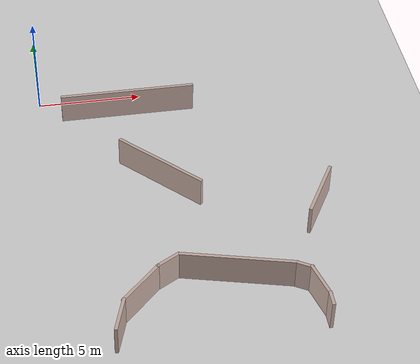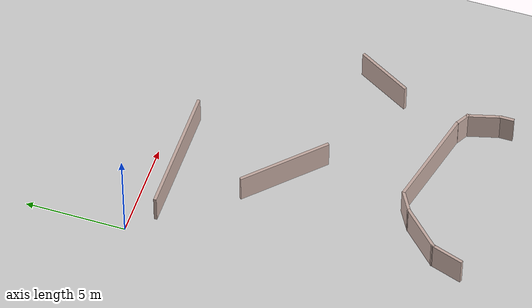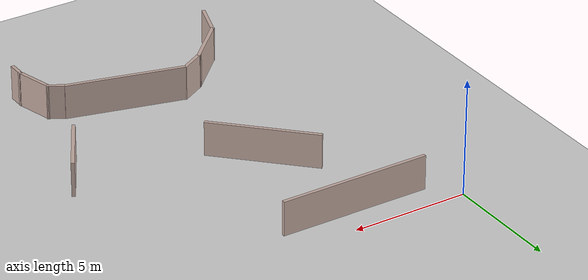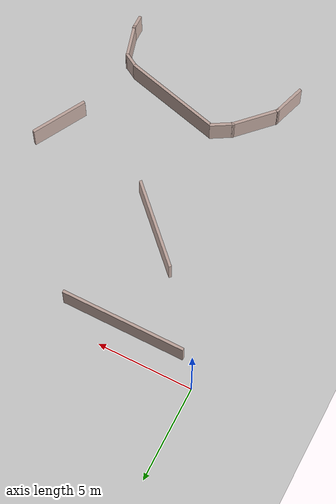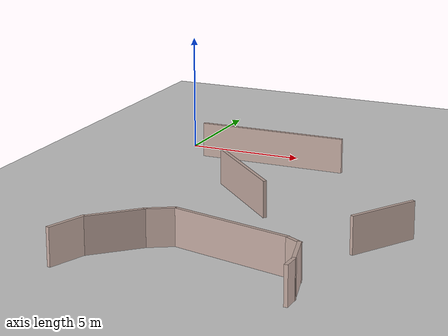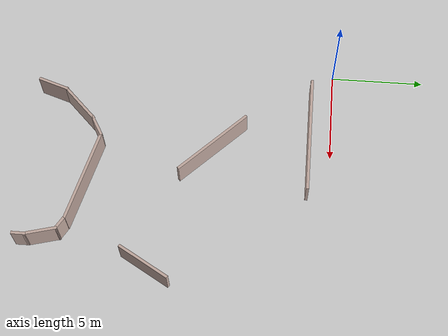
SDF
<sdf version="1.6">
 <world name="default">
  <model name="ground_plane">
   <static>1</static>
   <link name="link">
    <collision name="collision">
     <geometry><plane><normal>0 0 1</normal><size>100 100</size></plane></geometry>
     <surface><friction><ode><mu>100</mu><mu2>50</mu2></ode></friction></surface>
    </collision>
    <visual name="visual">
     <cast_shadows>0</cast_shadows>
     <geometry><plane><normal>0 0 1</normal><size>100 100</size></plane></geometry>
     <material>
      <script><uri>file://media/materials/scripts/gazebo.material</uri><name>Gazebo/Grey</name></script>
     </material>
    </visual>
   </link>
  </model>
  <model name="wall12">
   <pose>6.96274 -8.60893 0 0 -0 0</pose>
   <link name="Wall_0">
    <collision name="Wall_0_Collision">
     <geometry><box><size>1.73114 0.15 1.5</size></box></geometry>
     <pose>0 0 0.75 0 -0 0</pose>
    </collision>
    <visual name="Wall_0_Visual">
     <pose>0 0 0.75 0 -0 0</pose>
     <geometry><box><size>1.73114 0.15 1.5</size></box></geometry>
     <material>
      <script><uri>file://media/materials/scripts/gazebo.material</uri><name>Gazebo/Grey</name></script>
      <ambient>0.760784 0.662745 0.627451 1</ambient>
     </material>
     <meta><layer>0</layer></meta>
    </visual>
    <pose>-4.71274 -6.64107 0 0 -0 1.24905</pose>
   </link>
   <link name="Wall_13">
    <collision name="Wall_13_Collision">
     <geometry><box><size>6.5 0.15 1.5</size></box></geometry>
     <pose>0 0 0.75 0 -0 0</pose>
    </collision>
    <visual name="Wall_13_Visual">
     <pose>0 0 0.75 0 -0 0</pose>
     <geometry><box><size>6.5 0.15 1.5</size></box></geometry>
     <material>
      <script><uri>file://media/materials/scripts/gazebo.material</uri><name>Gazebo/Grey</name></script>
      <ambient>0.760784 0.662745 0.627451 1</ambient>
     </material>
     <meta><layer>0</layer></meta>
    </visual>
    <pose>-2.67774 7.41093 0 0 -0 0</pose>
   </link>
   <link name="Wall_15">
    <collision name="Wall_15_Collision">
     <geometry><box><size>4.75 0.15 1.5</size></box></geometry>
     <pose>0 0 0.75 0 -0 0</pose>
    </collision>
    <visual name="Wall_15_Visual">
     <pose>0 0 0.75 0 -0 0</pose>
     <geometry><box><size>4.75 0.15 1.5</size></box></geometry>
     <material>
      <script><uri>file://media/materials/scripts/gazebo.material</uri><name>Gazebo/Grey</name></script>
      <ambient>0.760784 0.662745 0.627451 1</ambient>
     </material>
     <meta><layer>0</layer></meta>
    </visual>
    <pose>-1.78524 2.28593 0 0 -0 -0.785244</pose>
   </link>
   <link name="Wall_2">
    <collision name="Wall_2_Collision">
     <geometry><box><size>2.5 0.15 1.5</size></box></geometry>
     <pose>0 0 0.75 0 -0 0</pose>
    </collision>
    <visual name="Wall_2_Visual">
     <pose>0 0 0.75 0 -0 0</pose>
     <geometry><box><size>2.5 0.15 1.5</size></box></geometry>
     <material>
      <script><uri>file://media/materials/scripts/gazebo.material</uri><name>Gazebo/Grey</name></script>
      <ambient>0.760784 0.662745 0.627451 1</ambient>
     </material>
     <meta><layer>0</layer></meta>
    </visual>
    <pose>-3.63175 -5.06007 0 0 -0 0.785398</pose>
   </link>
   <link name="Wall_3">
    <collision name="Wall_3_Collision">
     <geometry><box><size>1.25 0.15 1.5</size></box></geometry>
     <pose>0 0 0.75 0 -0 0</pose>
    </collision>
    <visual name="Wall_3_Visual">
     <pose>0 0 0.75 0 -0 0</pose>
     <geometry><box><size>1.25 0.15 1.5</size></box></geometry>
     <material>
      <script><uri>file://media/materials/scripts/gazebo.material</uri><name>Gazebo/Grey</name></script>
      <ambient>0.760784 0.662745 0.627451 1</ambient>
     </material>
     <meta><layer>0</layer></meta>
    </visual>
    <pose>-2.32475 -3.95407 0 0 -0 0.523884</pose>
   </link>
   <link name="Wall_5">
    <collision name="Wall_5_Collision">
     <geometry><box><size>0.75 0.15 1.5</size></box></geometry>
     <pose>0 0 0.75 0 -0 0</pose>
    </collision>
    <visual name="Wall_5_Visual">
     <pose>0 0 0.75 0 -0 0</pose>
     <geometry><box><size>0.75 0.15 1.5</size></box></geometry>
     <material>
      <script><uri>file://media/materials/scripts/gazebo.material</uri><name>Gazebo/Grey</name></script>
      <ambient>0.760784 0.662745 0.627451 1</ambient>
     </material>
     <meta><layer>0</layer></meta>
    </visual>
    <pose>4.07425 -7.09807 0 0 -0 1.5708</pose>
   </link>
   <link name="Wall_6">
    <collision name="Wall_6_Collision">
     <geometry><box><size>1.75 0.15 1.5</size></box></geometry>
     <pose>0 0 0.75 0 -0 0</pose>
    </collision>
    <visual name="Wall_6_Visual">
     <pose>0 0 0.75 0 -0 0</pose>
     <geometry><box><size>1.75 0.15 1.5</size></box></geometry>
     <material>
      <script><uri>file://media/materials/scripts/gazebo.material</uri><name>Gazebo/Grey</name></script>
      <ambient>0.760784 0.662745 0.627451 1</ambient>
     </material>
     <meta><layer>0</layer></meta>
    </visual>
    <pose>3.86726 -6.02557 0 0 -0 1.83261</pose>
   </link>
   <link name="Wall_7">
    <collision name="Wall_7_Collision">
     <geometry><box><size>0.75 0.15 1.5</size></box></geometry>
     <pose>0 0 0.75 0 -0 0</pose>
    </collision>
    <visual name="Wall_7_Visual">
     <pose>0 0 0.75 0 -0 0</pose>
     <geometry><box><size>0.75 0.15 1.5</size></box></geometry>
     <material>
      <script><uri>file://media/materials/scripts/gazebo.material</uri><name>Gazebo/Grey</name></script>
      <ambient>0.760784 0.662745 0.627451 1</ambient>
     </material>
     <meta><layer>0</layer></meta>
    </visual>
    <pose>3.40026 -5.10307 0 0 -0 2.61831</pose>
   </link>
   <link name="Wall_9">
    <collision name="Wall_9_Collision">
     <geometry><box><size>3 0.15 1.5</size></box></geometry>
     <pose>0 0 0.75 0 -0 0</pose>
    </collision>
    <visual name="Wall_9_Visual">
     <pose>0 0 0.75 0 -0 0</pose>
     <geometry><box><size>3 0.15 1.5</size></box></geometry>
     <material>
      <script><uri>file://media/materials/scripts/gazebo.material</uri><name>Gazebo/Grey</name></script>
      <ambient>0.760784 0.662745 0.627451 1</ambient>
     </material>
     <meta><layer>0</layer></meta>
    </visual>
    <pose>5.11275 -0.631066 0 0 -0 1.04717</pose>
   </link>
   <static>1</static>
  </model>
  <model name="wall1">
   <pose>7.6 -12.9 0 0 -0 0</pose>
   <link name="Wall_0">
    <collision name="Wall_0_Collision">
     <geometry><box><size>5.09773 0.15 1.5</size></box></geometry>
     <pose>0 0 0.75 0 -0 0</pose>
    </collision>
    <visual name="Wall_0_Visual">
     <pose>0 0 0.75 0 -0 0</pose>
     <geometry><box><size>5.09773 0.15 1.5</size></box></geometry>
     <material>
      <script><uri>file://media/materials/scripts/gazebo.material</uri><name>Gazebo/Grey</name></script>
      <ambient>0.760784 0.662745 0.627451 1</ambient>
     </material>
     <meta><layer>0</layer></meta>
    </visual>
    <pose>0 0 0 0 -0 -0.244979</pose>
   </link>
   <static>1</static>
  </model>
 </world>
</sdf>
